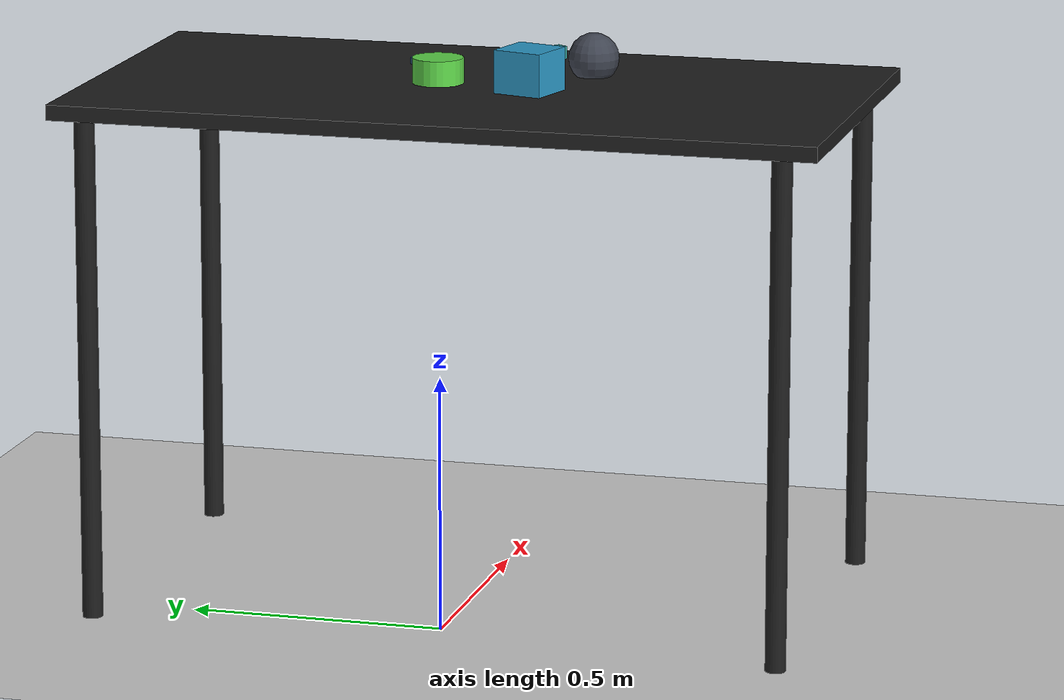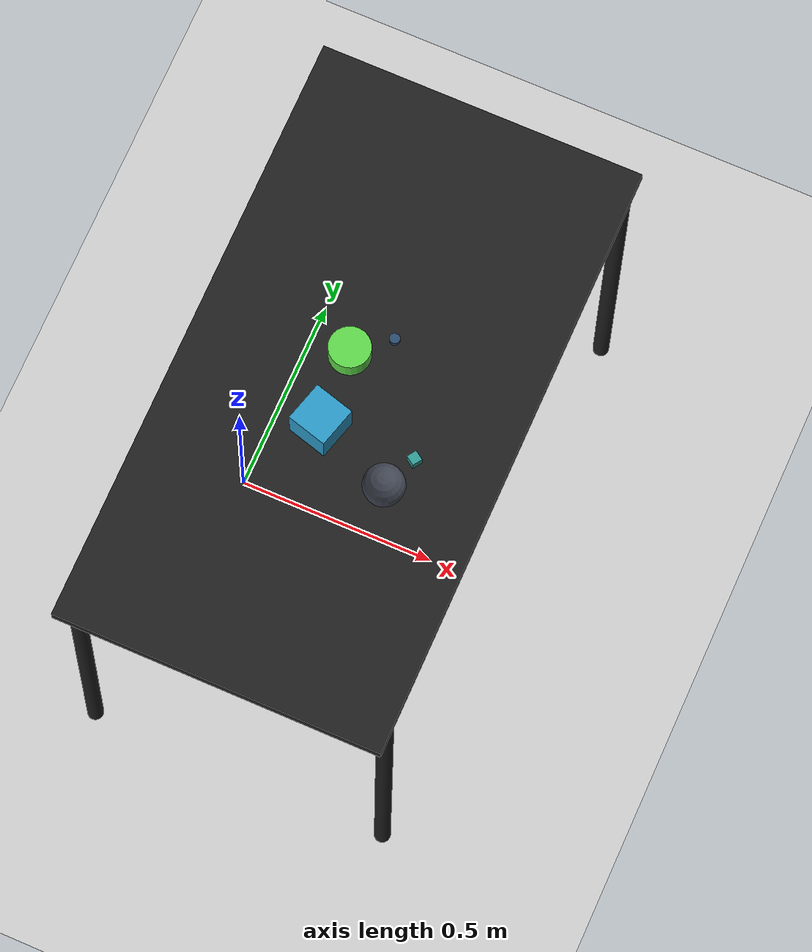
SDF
<?xml version="1.0" ?>
<sdf version="1.6">
  <world name="arm_world">
    <plugin filename="gz-sim-physics-system" name="gz::sim::systems::Physics">
      <engine>
        <filename>libgz-physics-bullet-featherstone-plugin.so</filename>
      </engine>
    </plugin>
    <plugin filename="gz-sim-user-commands-system" name="gz::sim::systems::UserCommands"/>
    <plugin filename="gz-sim-scene-broadcaster-system" name="gz::sim::systems::SceneBroadcaster"/>
    <plugin filename="gz-sim-sensors-system" name="gz::sim::systems::Sensors">
      <render_engine>ogre2</render_engine>
    </plugin>
    <gravity>0.0 0.0 -9.8</gravity>
    <scene>
      <shadows>false</shadows>
    </scene>
    <gui>
      <camera name="user_camera">
        <pose>0.75 -0.75 1.4 0 0.29 2.21</pose>
      </camera>
    </gui>
    <include>
      <uri>https://fuel.gazebosim.org/1.0/OpenRobotics/models/Sun</uri>
    </include>
    <model name="table">
      <static>true</static>
      <include>
        <uri>model://table</uri>
      </include>
      <pose>0.29 0 0 0 0 1.5708</pose>
    </model>
    <model name="ground_plane">
      <static>true</static>
      <link name="link">
        <collision name="collision">
          <geometry>
            <plane>
              <normal>0 0 1</normal>
            </plane>
          </geometry>
          <surface>
            <friction>
              <ode>
                <mu>1.0</mu>
                <mu2>1.0</mu2>
              </ode>
            </friction>
          </surface>
        </collision>
        <visual name="visual">
          <geometry>
            <plane>
              <normal>0 0 1</normal>
              <size>100 100</size>
            </plane>
          </geometry>
          <material>
            <ambient>0.8 0.8 0.8 1</ambient>
            <diffuse>0.8 0.8 0.8 1</diffuse>
            <specular>0.8 0.8 0.8 1</specular>
          </material>
        </visual>
      </link>
    </model>
    <model name="cube_s_0">
      <pose>0.49 -0.104 1.05 0 0 4.12</pose>
      <link name="cube_s_0_link">
        <inertial>
          <mass>0.05</mass>
          <inertia>
            <ixx>2.04e-7</ixx>
            <iyy>2.04e-7</iyy>
            <izz>3.9e-8</izz>
            <ixy>0</ixy>
            <ixz>0</ixz>
            <iyz>0</iyz>
          </inertia>
        </inertial>
        <collision name="cube_s_0_collision">
          <geometry>
            <box>
              <size>0.025 0.025 0.025</size>
            </box>
          </geometry>
          <surface>
            <friction>
              <ode>
                <mu>0.8</mu>
                <mu2>0.8</mu2>
                <fdir1>0 0 1</fdir1>
                <slip1>0.001</slip1>
                <slip2>0.001</slip2>
              </ode>
              <torsional>
                <coefficient>0.1</coefficient>
                <surface_radius>0.015</surface_radius>
                <use_patch_radius>true</use_patch_radius>
              </torsional>
            </friction>
            <contact>
              <ode>
                <kp>1e5</kp>
                <kd>10</kd>
                <max_vel>0.1</max_vel>
                <min_depth>0.001</min_depth>
                <soft_cfm>0.01</soft_cfm>
                <soft_erp>0.2</soft_erp>
              </ode>
            </contact>
            <bounce>
              <restitution_coefficient>0.2</restitution_coefficient>
              <threshold>0.01</threshold>
            </bounce>
          </surface>
        </collision>
        <visual name="cube_s_0_visual">
          <geometry>
            <box>
              <size>0.025 0.025 0.025</size>
            </box>
          </geometry>
          <material>
            <ambient>0.19 0.61 0.59 1</ambient>
            <diffuse>0.19 0.61 0.59 1</diffuse>
          </material>
        </visual>
        <velocity_decay>
          <linear>1</linear>
          <angular>1</angular>
        </velocity_decay>
      </link>
    </model>
    <model name="cube_l_1">
      <pose>0.261 -0.106 1.05 0 0 6.01</pose>
      <link name="cube_l_1_link">
        <inertial>
          <mass>0.05</mass>
          <inertia>
            <ixx>2.04e-7</ixx>
            <iyy>2.04e-7</iyy>
            <izz>3.9e-8</izz>
            <ixy>0</ixy>
            <ixz>0</ixz>
            <iyz>0</iyz>
          </inertia>
        </inertial>
        <collision name="cube_l_1_collision">
          <geometry>
            <box>
              <size>0.1 0.1 0.1</size>
            </box>
          </geometry>
          <surface>
            <friction>
              <ode>
                <mu>0.8</mu>
                <mu2>0.8</mu2>
                <fdir1>0 0 1</fdir1>
                <slip1>0.001</slip1>
                <slip2>0.001</slip2>
              </ode>
              <torsional>
                <coefficient>0.1</coefficient>
                <surface_radius>0.015</surface_radius>
                <use_patch_radius>true</use_patch_radius>
              </torsional>
            </friction>
            <contact>
              <ode>
                <kp>1e5</kp>
                <kd>10</kd>
                <max_vel>0.1</max_vel>
                <min_depth>0.001</min_depth>
                <soft_cfm>0.01</soft_cfm>
                <soft_erp>0.2</soft_erp>
              </ode>
            </contact>
            <bounce>
              <restitution_coefficient>0.2</restitution_coefficient>
              <threshold>0.01</threshold>
            </bounce>
          </surface>
        </collision>
        <visual name="cube_l_1_visual">
          <geometry>
            <box>
              <size>0.1 0.1 0.1</size>
            </box>
          </geometry>
          <material>
            <ambient>0.17 0.6 0.78 1</ambient>
            <diffuse>0.17 0.6 0.78 1</diffuse>
          </material>
        </visual>
        <velocity_decay>
          <linear>1</linear>
          <angular>1</angular>
        </velocity_decay>
      </link>
    </model>
    <model name="cylinder_l_2">
      <pose>0.253 0.075 1.05 0 0 2.58</pose>
      <link name="cylinder_l_2_link">
        <inertial>
          <mass>0.05</mass>
          <inertia>
            <ixx>2.04e-7</ixx>
            <iyy>2.04e-7</iyy>
            <izz>3.9e-8</izz>
            <ixy>0</ixy>
            <ixz>0</ixz>
            <iyz>0</iyz>
          </inertia>
        </inertial>
        <collision name="cylinder_l_2_collision">
          <geometry>
            <cylinder>
              <radius>0.05</radius>
              <length>0.05</length>
            </cylinder>
          </geometry>
          <surface>
            <friction>
              <ode>
                <mu>0.8</mu>
                <mu2>0.8</mu2>
                <fdir1>0 0 1</fdir1>
                <slip1>0.001</slip1>
                <slip2>0.001</slip2>
              </ode>
              <torsional>
                <coefficient>0.1</coefficient>
                <surface_radius>0.015</surface_radius>
                <use_patch_radius>true</use_patch_radius>
              </torsional>
            </friction>
            <contact>
              <ode>
                <kp>1e5</kp>
                <kd>10</kd>
                <max_vel>0.1</max_vel>
                <min_depth>0.001</min_depth>
                <soft_cfm>0.01</soft_cfm>
                <soft_erp>0.2</soft_erp>
              </ode>
            </contact>
            <bounce>
              <restitution_coefficient>0.2</restitution_coefficient>
              <threshold>0.01</threshold>
            </bounce>
          </surface>
        </collision>
        <visual name="cylinder_l_2_visual">
          <geometry>
            <cylinder>
              <radius>0.05</radius>
              <length>0.05</length>
            </cylinder>
          </geometry>
          <material>
            <ambient>0.37 0.84 0.29 1</ambient>
            <diffuse>0.37 0.84 0.29 1</diffuse>
          </material>
        </visual>
        <velocity_decay>
          <linear>1</linear>
          <angular>1</angular>
        </velocity_decay>
      </link>
    </model>
    <model name="cylinder_s_3">
      <pose>0.335 0.141 1.05 0 0 5.2</pose>
      <link name="cylinder_s_3_link">
        <inertial>
          <mass>0.05</mass>
          <inertia>
            <ixx>2.04e-7</ixx>
            <iyy>2.04e-7</iyy>
            <izz>3.9e-8</izz>
            <ixy>0</ixy>
            <ixz>0</ixz>
            <iyz>0</iyz>
          </inertia>
        </inertial>
        <collision name="cylinder_s_3_collision">
          <geometry>
            <cylinder>
              <radius>0.0125</radius>
              <length>0.0125</length>
            </cylinder>
          </geometry>
          <surface>
            <friction>
              <ode>
                <mu>0.8</mu>
                <mu2>0.8</mu2>
                <fdir1>0 0 1</fdir1>
                <slip1>0.001</slip1>
                <slip2>0.001</slip2>
              </ode>
              <torsional>
                <coefficient>0.1</coefficient>
                <surface_radius>0.015</surface_radius>
                <use_patch_radius>true</use_patch_radius>
              </torsional>
            </friction>
            <contact>
              <ode>
                <kp>1e5</kp>
                <kd>10</kd>
                <max_vel>0.1</max_vel>
                <min_depth>0.001</min_depth>
                <soft_cfm>0.01</soft_cfm>
                <soft_erp>0.2</soft_erp>
              </ode>
            </contact>
            <bounce>
              <restitution_coefficient>0.2</restitution_coefficient>
              <threshold>0.01</threshold>
            </bounce>
          </surface>
        </collision>
        <visual name="cylinder_s_3_visual">
          <geometry>
            <cylinder>
              <radius>0.0125</radius>
              <length>0.0125</length>
            </cylinder>
          </geometry>
          <material>
            <ambient>0.16 0.29 0.43 1</ambient>
            <diffuse>0.16 0.29 0.43 1</diffuse>
          </material>
        </visual>
        <velocity_decay>
          <linear>1</linear>
          <angular>1</angular>
        </velocity_decay>
      </link>
    </model>
    <model name="sphere_l_4">
      <pose>0.451 -0.186 1.05 0 0 3.77</pose>
      <link name="sphere_l_4_link">
        <inertial>
          <mass>0.05</mass>
          <inertia>
            <ixx>2.04e-7</ixx>
            <iyy>2.04e-7</iyy>
            <izz>3.9e-8</izz>
            <ixy>0</ixy>
            <ixz>0</ixz>
            <iyz>0</iyz>
          </inertia>
        </inertial>
        <collision name="sphere_l_4_collision">
          <geometry>
            <sphere>
              <radius>0.05</radius>
            </sphere>
          </geometry>
          <surface>
            <friction>
              <ode>
                <mu>0.8</mu>
                <mu2>0.8</mu2>
                <fdir1>0 0 1</fdir1>
                <slip1>0.001</slip1>
                <slip2>0.001</slip2>
              </ode>
              <torsional>
                <coefficient>0.1</coefficient>
                <surface_radius>0.015</surface_radius>
                <use_patch_radius>true</use_patch_radius>
              </torsional>
            </friction>
            <contact>
              <ode>
                <kp>1e5</kp>
                <kd>10</kd>
                <max_vel>0.1</max_vel>
                <min_depth>0.001</min_depth>
                <soft_cfm>0.01</soft_cfm>
                <soft_erp>0.2</soft_erp>
              </ode>
            </contact>
            <bounce>
              <restitution_coefficient>0.2</restitution_coefficient>
              <threshold>0.01</threshold>
            </bounce>
          </surface>
        </collision>
        <visual name="sphere_l_4_visual">
          <geometry>
            <sphere>
              <radius>0.05</radius>
            </sphere>
          </geometry>
          <material>
            <ambient>0.25 0.27 0.32 1</ambient>
            <diffuse>0.25 0.27 0.32 1</diffuse>
          </material>
        </visual>
        <velocity_decay>
          <linear>1</linear>
          <angular>1</angular>
        </velocity_decay>
      </link>
    </model>
  </world>
</sdf>

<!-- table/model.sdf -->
<sdf version="1.5">
  <model name="table">
    <static>true</static>
    <link name="link">
      <collision name="surface">
        <pose>0 0 1.0 0 0 0</pose>
        <geometry>
          <box>
            <size>1.5 0.8 0.03</size>
          </box>
        </geometry>
        <surface>
          <friction>
            <ode>
              <mu>0.6</mu>
              <mu2>0.6</mu2>
            </ode>
          </friction>
        </surface>
      </collision>
      <visual name="surface">
        <pose>0 0 1.0 0 0 0</pose>
        <geometry>
          <box>
            <size>1.5 0.8 0.03</size>
          </box>
        </geometry>
        <material>
          <script>
            <uri>file://media/materials/scripts/gazebo.material</uri>
            <name>Gazebo/Black</name>
          </script>
        </material>
      </visual>
      <collision name="front_left_leg">
        <pose>0.68 0.38 0.5 0 0 0</pose>
        <geometry>
          <cylinder>
            <radius>0.02</radius>
            <length>1.0</length>
          </cylinder>
        </geometry>
      </collision>
      <visual name="front_left_leg">
        <pose>0.68 0.38 0.5 0 0 0</pose>
        <geometry>
          <cylinder>
            <radius>0.02</radius>
            <length>1.0</length>
          </cylinder>
        </geometry>
        <material>
          <script>
            <uri>file://media/materials/scripts/gazebo.material</uri>
            <name>Gazebo/Black</name>
          </script>
        </material>
      </visual>
      <collision name="front_right_leg">
        <pose>0.68 -0.38 0.5 0 0 0</pose>
        <geometry>
          <cylinder>
            <radius>0.02</radius>
            <length>1.0</length>
          </cylinder>
        </geometry>
      </collision>
      <visual name="front_right_leg">
        <pose>0.68 -0.38 0.5 0 0 0</pose>
        <geometry>
          <cylinder>
            <radius>0.02</radius>
            <length>1.0</length>
          </cylinder>
        </geometry>
        <material>
          <script>
            <uri>file://media/materials/scripts/gazebo.material</uri>
            <name>Gazebo/Black</name>
          </script>
        </material>
      </visual>
      <collision name="back_right_leg">
        <pose>-0.68 -0.38 0.5 0 0 0</pose>
        <geometry>
          <cylinder>
            <radius>0.02</radius>
            <length>1.0</length>
          </cylinder>
        </geometry>
      </collision>
      <visual name="back_right_leg">
        <pose>-0.68 -0.38 0.5 0 0 0</pose>
        <geometry>
          <cylinder>
            <radius>0.02</radius>
            <length>1.0</length>
          </cylinder>
        </geometry>
        <material>
          <script>
            <uri>file://media/materials/scripts/gazebo.material</uri>
            <name>Gazebo/Black</name>
          </script>
        </material>
      </visual>
      <collision name="back_left_leg">
        <pose>-0.68 0.38 0.5 0 0 0</pose>
        <geometry>
          <cylinder>
            <radius>0.02</radius>
            <length>1.0</length>
          </cylinder>
        </geometry>
      </collision>
      <visual name="back_left_leg">
        <pose>-0.68 0.38 0.5 0 0 0</pose>
        <geometry>
          <cylinder>
            <radius>0.02</radius>
            <length>1.0</length>
          </cylinder>
        </geometry>
        <material>
          <script>
            <uri>file://media/materials/scripts/gazebo.material</uri>
            <name>Gazebo/Black</name>
          </script>
        </material>
      </visual>
    </link>
  </model>
</sdf>
